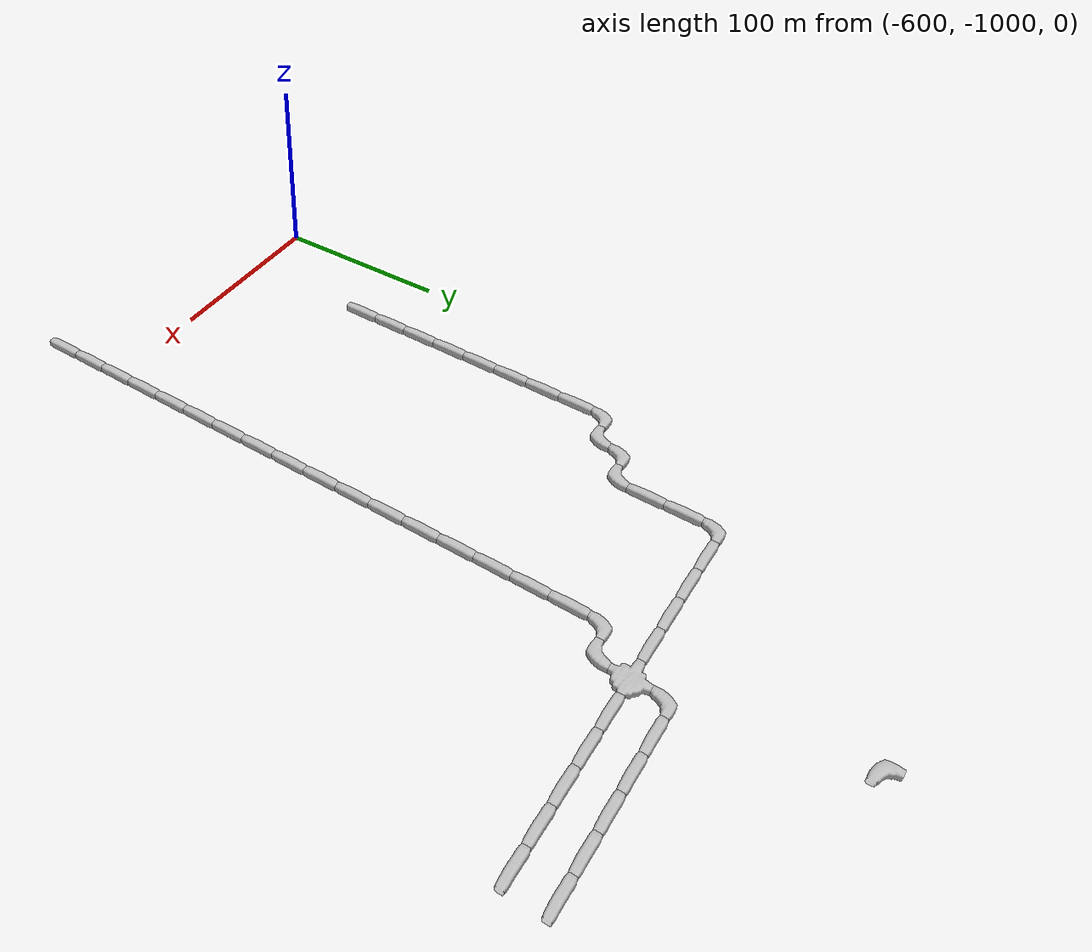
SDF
<sdf version="1.6">
 <world name="cave_16000_4">
  <include>
   <static>true</static>
   <name>cave_-16_-33</name>
   <pose>-320 -660 0 0 0 1.5707963267948966</pose>
   <uri>model://cave_straight_20m</uri>
  </include>
  <include>
   <static>true</static>
   <name>cave_-17_-33</name>
   <pose>-340 -660 0 0 0 1.5707963267948966</pose>
   <uri>model://cave_straight_20m</uri>
  </include>
  <include>
   <static>true</static>
   <name>cave_-18_-33</name>
   <pose>-360 -660 0 0 0 1.5707963267948966</pose>
   <uri>model://cave_straight_20m</uri>
  </include>
  <include>
   <static>true</static>
   <name>cave_-19_-33</name>
   <pose>-380 -660 0 0 0 1.5707963267948966</pose>
   <uri>model://cave_straight_20m</uri>
  </include>
  <include>
   <static>true</static>
   <name>cave_-20_-33</name>
   <pose>-400 -660 0 0 0 1.5707963267948966</pose>
   <uri>model://cave_straight_20m</uri>
  </include>
  <include>
   <static>true</static>
   <name>cave_-21_-33</name>
   <pose>-420 -660 0 0 0 -1.5707963267948966</pose>
   <uri>model://cave_L_20m</uri>
  </include>
  <include>
   <static>true</static>
   <name>cave_-21_-34</name>
   <pose>-420 -680 0 0 0 -1.5707963267948966</pose>
   <uri>model://cave_4way_20m</uri>
  </include>
  <include>
   <static>true</static>
   <name>cave_-20_-34</name>
   <pose>-400 -680 0 0 0 1.5707963267948966</pose>
   <uri>model://cave_straight_20m</uri>
  </include>
  <include>
   <static>true</static>
   <name>cave_-19_-34</name>
   <pose>-380 -680 0 0 0 1.5707963267948966</pose>
   <uri>model://cave_straight_20m</uri>
  </include>
  <include>
   <static>true</static>
   <name>cave_-18_-34</name>
   <pose>-360 -680 0 0 0 1.5707963267948966</pose>
   <uri>model://cave_straight_20m</uri>
  </include>
  <include>
   <static>true</static>
   <name>cave_-17_-34</name>
   <pose>-340 -680 0 0 0 1.5707963267948966</pose>
   <uri>model://cave_straight_20m</uri>
  </include>
  <include>
   <static>true</static>
   <name>cave_-16_-34</name>
   <pose>-320 -680 0 0 0 1.5707963267948966</pose>
   <uri>model://cave_straight_20m</uri>
  </include>
  <include>
   <static>true</static>
   <name>cave_-21_-35</name>
   <pose>-420 -700 0 0 0 1.5707963267948966</pose>
   <uri>model://cave_L_20m</uri>
  </include>
  <include>
   <static>true</static>
   <name>cave_-22_-35</name>
   <pose>-440 -700 0 0 0 -1.5707963267948966</pose>
   <uri>model://cave_L_20m</uri>
  </include>
  <include>
   <static>true</static>
   <name>cave_-22_-36</name>
   <pose>-440 -720 0 0 0 0.0</pose>
   <uri>model://cave_straight_20m</uri>
  </include>
  <include>
   <static>true</static>
   <name>cave_-22_-37</name>
   <pose>-440 -740 0 0 0 0.0</pose>
   <uri>model://cave_straight_20m</uri>
  </include>
  <include>
   <static>true</static>
   <name>cave_-22_-38</name>
   <pose>-440 -760 0 0 0 0.0</pose>
   <uri>model://cave_straight_20m</uri>
  </include>
  <include>
   <static>true</static>
   <name>cave_-22_-39</name>
   <pose>-440 -780 0 0 0 0.0</pose>
   <uri>model://cave_straight_20m</uri>
  </include>
  <include>
   <static>true</static>
   <name>cave_-22_-40</name>
   <pose>-440 -800 0 0 0 0.0</pose>
   <uri>model://cave_straight_20m</uri>
  </include>
  <include>
   <static>true</static>
   <name>cave_-22_-41</name>
   <pose>-440 -820 0 0 0 0.0</pose>
   <uri>model://cave_straight_20m</uri>
  </include>
  <include>
   <static>true</static>
   <name>cave_-22_-42</name>
   <pose>-440 -840 0 0 0 0.0</pose>
   <uri>model://cave_straight_20m</uri>
  </include>
  <include>
   <static>true</static>
   <name>cave_-22_-43</name>
   <pose>-440 -860 0 0 0 0.0</pose>
   <uri>model://cave_straight_20m</uri>
  </include>
  <include>
   <static>true</static>
   <name>cave_-22_-44</name>
   <pose>-440 -880 0 0 0 0.0</pose>
   <uri>model://cave_straight_20m</uri>
  </include>
  <include>
   <static>true</static>
   <name>cave_-22_-45</name>
   <pose>-440 -900 0 0 0 0.0</pose>
   <uri>model://cave_straight_20m</uri>
  </include>
  <include>
   <static>true</static>
   <name>cave_-22_-46</name>
   <pose>-440 -920 0 0 0 0.0</pose>
   <uri>model://cave_straight_20m</uri>
  </include>
  <include>
   <static>true</static>
   <name>cave_-22_-47</name>
   <pose>-440 -940 0 0 0 0.0</pose>
   <uri>model://cave_straight_20m</uri>
  </include>
  <include>
   <static>true</static>
   <name>cave_-22_-48</name>
   <pose>-440 -960 0 0 0 0.0</pose>
   <uri>model://cave_straight_20m</uri>
  </include>
  <include>
   <static>true</static>
   <name>cave_-22_-49</name>
   <pose>-440 -980 0 0 0 0.0</pose>
   <uri>model://cave_straight_20m</uri>
  </include>
  <include>
   <static>true</static>
   <name>cave_-22_-50</name>
   <pose>-440 -1000 0 0 0 0.0</pose>
   <uri>model://cave_straight_20m</uri>
  </include>
  <include>
   <static>true</static>
   <name>cave_-22_-51</name>
   <pose>-440 -1020 0 0 0 0.0</pose>
   <uri>model://cave_straight_20m</uri>
  </include>
  <include>
   <static>true</static>
   <name>cave_-22_-52</name>
   <pose>-440 -1040 0 0 0 0.0</pose>
   <uri>model://cave_straight_20m</uri>
  </include>
  <include>
   <static>true</static>
   <name>cave_-22_-34</name>
   <pose>-440 -680 0 0 0 1.5707963267948966</pose>
   <uri>model://cave_straight_20m</uri>
  </include>
  <include>
   <static>true</static>
   <name>cave_-23_-34</name>
   <pose>-460 -680 0 0 0 1.5707963267948966</pose>
   <uri>model://cave_straight_20m</uri>
  </include>
  <include>
   <static>true</static>
   <name>cave_-24_-34</name>
   <pose>-480 -680 0 0 0 1.5707963267948966</pose>
   <uri>model://cave_straight_20m</uri>
  </include>
  <include>
   <static>true</static>
   <name>cave_-25_-34</name>
   <pose>-500 -680 0 0 0 1.5707963267948966</pose>
   <uri>model://cave_straight_20m</uri>
  </include>
  <include>
   <static>true</static>
   <name>cave_-26_-34</name>
   <pose>-520 -680 0 0 0 -1.5707963267948966</pose>
   <uri>model://cave_L_20m</uri>
  </include>
  <include>
   <static>true</static>
   <name>cave_-26_-35</name>
   <pose>-520 -700 0 0 0 0.0</pose>
   <uri>model://cave_straight_20m</uri>
  </include>
  <include>
   <static>true</static>
   <name>cave_-26_-36</name>
   <pose>-520 -720 0 0 0 0.0</pose>
   <uri>model://cave_straight_20m</uri>
  </include>
  <include>
   <static>true</static>
   <name>cave_-26_-37</name>
   <pose>-520 -740 0 0 0 1.5707963267948966</pose>
   <uri>model://cave_L_20m</uri>
  </include>
  <include>
   <static>true</static>
   <name>cave_-27_-37</name>
   <pose>-540 -740 0 0 0 -1.5707963267948966</pose>
   <uri>model://cave_L_20m</uri>
  </include>
  <include>
   <static>true</static>
   <name>cave_-27_-38</name>
   <pose>-540 -760 0 0 0 1.5707963267948966</pose>
   <uri>model://cave_L_20m</uri>
  </include>
  <include>
   <static>true</static>
   <name>cave_-28_-38</name>
   <pose>-560 -760 0 0 0 -1.5707963267948966</pose>
   <uri>model://cave_L_20m</uri>
  </include>
  <include>
   <static>true</static>
   <name>cave_-28_-39</name>
   <pose>-560 -780 0 0 0 0.0</pose>
   <uri>model://cave_straight_20m</uri>
  </include>
  <include>
   <static>true</static>
   <name>cave_-28_-40</name>
   <pose>-560 -800 0 0 0 0.0</pose>
   <uri>model://cave_straight_20m</uri>
  </include>
  <include>
   <static>true</static>
   <name>cave_-28_-41</name>
   <pose>-560 -820 0 0 0 0.0</pose>
   <uri>model://cave_straight_20m</uri>
  </include>
  <include>
   <static>true</static>
   <name>cave_-28_-42</name>
   <pose>-560 -840 0 0 0 0.0</pose>
   <uri>model://cave_straight_20m</uri>
  </include>
  <include>
   <static>true</static>
   <name>cave_-28_-43</name>
   <pose>-560 -860 0 0 0 0.0</pose>
   <uri>model://cave_straight_20m</uri>
  </include>
  <include>
   <static>true</static>
   <name>cave_-28_-44</name>
   <pose>-560 -880 0 0 0 0.0</pose>
   <uri>model://cave_straight_20m</uri>
  </include>
  <include>
   <static>true</static>
   <name>cave_-28_-45</name>
   <pose>-560 -900 0 0 0 0.0</pose>
   <uri>model://cave_straight_20m</uri>
  </include>
  <include>
   <static>true</static>
   <name>cave_-28_-46</name>
   <pose>-560 -920 0 0 0 0.0</pose>
   <uri>model://cave_straight_20m</uri>
  </include>
  <include>
   <static>true</static>
   <name>cave_-22_-29</name>
   <pose>-440 -580 0 0 0 0.0</pose>
   <uri>model://cave_L_20m</uri>
  </include>
 </world>
</sdf>
